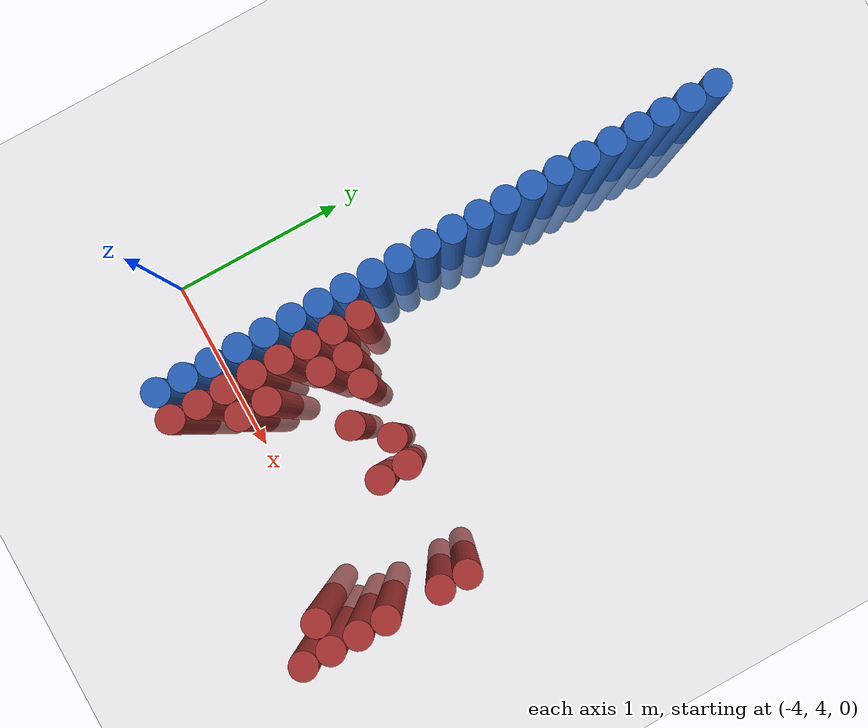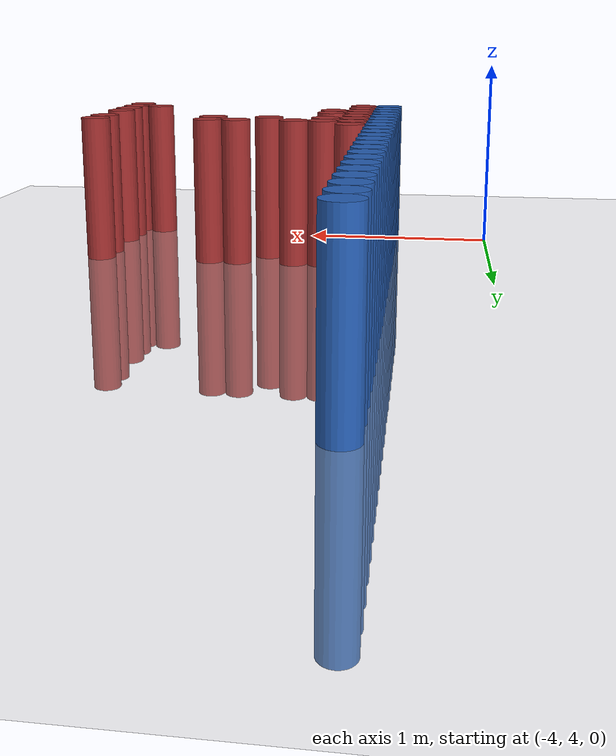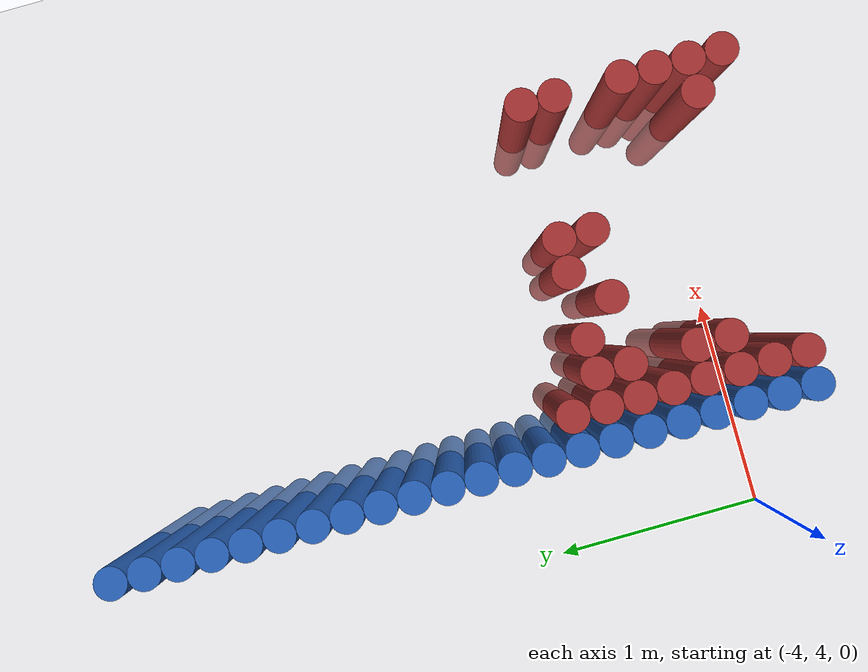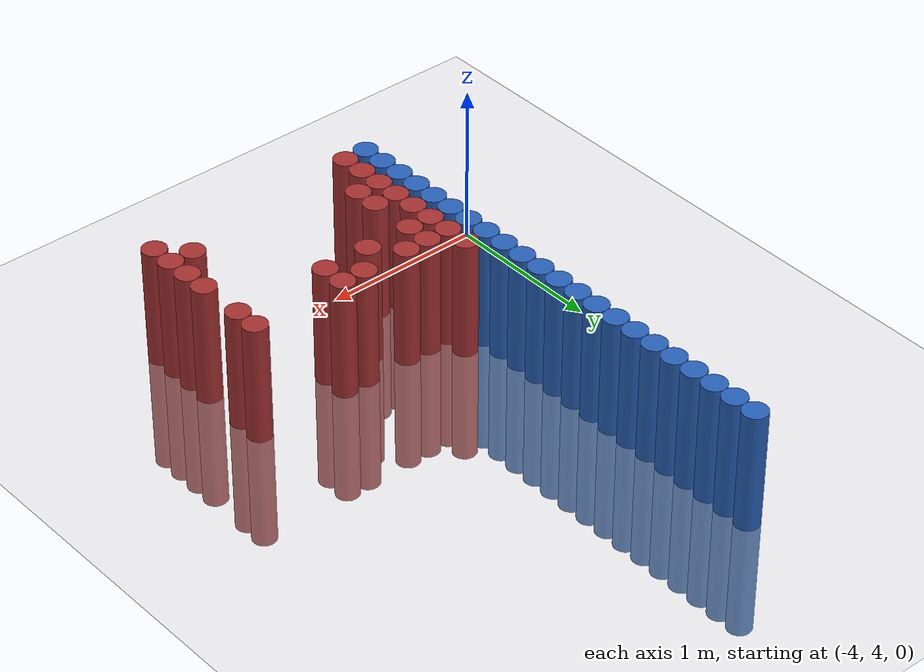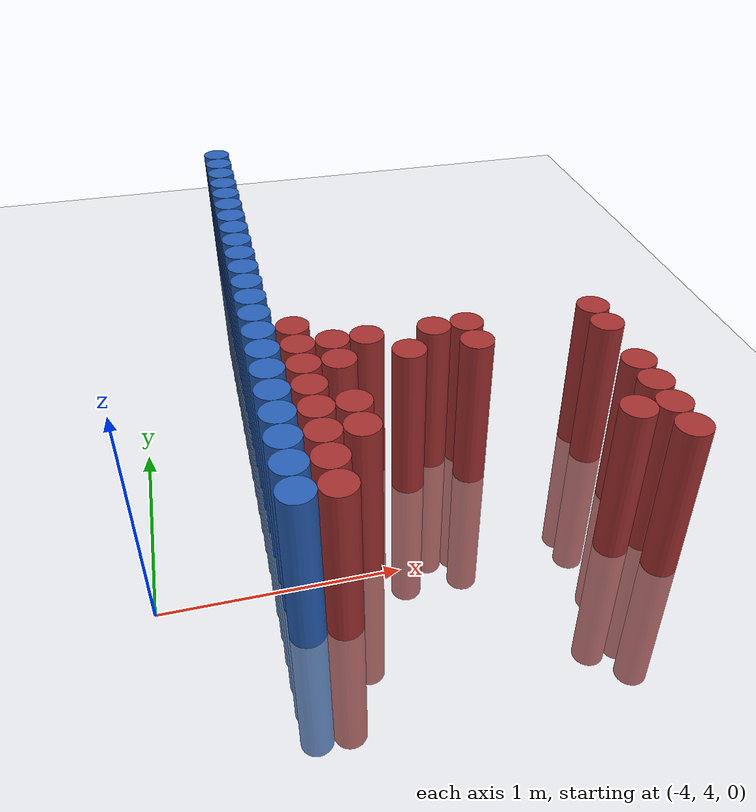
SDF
<sdf version="1.7">
 <world name="default">
  <model name="ground_plane">
   <static>1</static>
   <link name="link">
    <collision name="collision">
     <geometry><plane><normal>0 0 1</normal><size>100 100</size></plane></geometry>
     <surface><friction><ode><mu>100</mu><mu2>50</mu2></ode></friction></surface>
    </collision>
    <visual name="visual">
     <cast_shadows>0</cast_shadows>
     <geometry><plane><normal>0 0 1</normal><size>100 100</size></plane></geometry>
     <material>
      <script><uri>file://media/materials/scripts/gazebo.material</uri><name>Gazebo/Grey</name></script>
     </material>
    </visual>
   </link>
  </model>
  <model name="unit_cylinder_165">
   <static>1</static>
   <pose>-3.425 3.775 0 0 -0 0</pose>
   <link name="link">
    <inertial>
     <mass>1</mass>
     <inertia><ixx>0.145833</ixx><ixy>0</ixy><ixz>0</ixz><iyy>0.145833</iyy><iyz>0</iyz><izz>0.125</izz></inertia>
    </inertial>
    <collision name="collision">
     <geometry><cylinder><radius>0.075</radius><length>1.5</length></cylinder></geometry>
    </collision>
    <visual name="visual">
     <geometry><cylinder><radius>0.075</radius><length>1.5</length></cylinder></geometry>
     <material><ambient>0.152 0.379 0.72 1</ambient><diffuse>0.152 0.379 0.72 1</diffuse></material>
     <material>
      <script><name>Gazebo/Grey</name><uri>file://media/materials/scripts/gazebo.material</uri></script>
     </material>
    </visual>
   </link>
  </model>
  <model name="unit_cylinder_167">
   <static>1</static>
   <pose>-3.425 3.925 0 0 -0 0</pose>
   <link name="link">
    <inertial>
     <mass>1</mass>
     <inertia><ixx>0.145833</ixx><ixy>0</ixy><ixz>0</ixz><iyy>0.145833</iyy><iyz>0</iyz><izz>0.125</izz></inertia>
    </inertial>
    <collision name="collision">
     <geometry><cylinder><radius>0.075</radius><length>1.5</length></cylinder></geometry>
    </collision>
    <visual name="visual">
     <geometry><cylinder><radius>0.075</radius><length>1.5</length></cylinder></geometry>
     <material><ambient>0.152 0.379 0.72 1</ambient><diffuse>0.152 0.379 0.72 1</diffuse></material>
     <material>
      <script><name>Gazebo/Grey</name><uri>file://media/materials/scripts/gazebo.material</uri></script>
     </material>
    </visual>
   </link>
  </model>
  <model name="unit_cylinder_169">
   <static>1</static>
   <pose>-3.425 4.075 0 0 -0 0</pose>
   <link name="link">
    <inertial>
     <mass>1</mass>
     <inertia><ixx>0.145833</ixx><ixy>0</ixy><ixz>0</ixz><iyy>0.145833</iyy><iyz>0</iyz><izz>0.125</izz></inertia>
    </inertial>
    <collision name="collision">
     <geometry><cylinder><radius>0.075</radius><length>1.5</length></cylinder></geometry>
    </collision>
    <visual name="visual">
     <geometry><cylinder><radius>0.075</radius><length>1.5</length></cylinder></geometry>
     <material><ambient>0.152 0.379 0.72 1</ambient><diffuse>0.152 0.379 0.72 1</diffuse></material>
     <material>
      <script><name>Gazebo/Grey</name><uri>file://media/materials/scripts/gazebo.material</uri></script>
     </material>
    </visual>
   </link>
  </model>
  <model name="unit_cylinder_171">
   <static>1</static>
   <pose>-3.425 4.225 0 0 -0 0</pose>
   <link name="link">
    <inertial>
     <mass>1</mass>
     <inertia><ixx>0.145833</ixx><ixy>0</ixy><ixz>0</ixz><iyy>0.145833</iyy><iyz>0</iyz><izz>0.125</izz></inertia>
    </inertial>
    <collision name="collision">
     <geometry><cylinder><radius>0.075</radius><length>1.5</length></cylinder></geometry>
    </collision>
    <visual name="visual">
     <geometry><cylinder><radius>0.075</radius><length>1.5</length></cylinder></geometry>
     <material><ambient>0.152 0.379 0.72 1</ambient><diffuse>0.152 0.379 0.72 1</diffuse></material>
     <material>
      <script><name>Gazebo/Grey</name><uri>file://media/materials/scripts/gazebo.material</uri></script>
     </material>
    </visual>
   </link>
  </model>
  <model name="unit_cylinder_173">
   <static>1</static>
   <pose>-3.425 4.375 0 0 -0 0</pose>
   <link name="link">
    <inertial>
     <mass>1</mass>
     <inertia><ixx>0.145833</ixx><ixy>0</ixy><ixz>0</ixz><iyy>0.145833</iyy><iyz>0</iyz><izz>0.125</izz></inertia>
    </inertial>
    <collision name="collision">
     <geometry><cylinder><radius>0.075</radius><length>1.5</length></cylinder></geometry>
    </collision>
    <visual name="visual">
     <geometry><cylinder><radius>0.075</radius><length>1.5</length></cylinder></geometry>
     <material><ambient>0.152 0.379 0.72 1</ambient><diffuse>0.152 0.379 0.72 1</diffuse></material>
     <material>
      <script><name>Gazebo/Grey</name><uri>file://media/materials/scripts/gazebo.material</uri></script>
     </material>
    </visual>
   </link>
  </model>
  <model name="unit_cylinder_175">
   <static>1</static>
   <pose>-3.425 4.525 0 0 -0 0</pose>
   <link name="link">
    <inertial>
     <mass>1</mass>
     <inertia><ixx>0.145833</ixx><ixy>0</ixy><ixz>0</ixz><iyy>0.145833</iyy><iyz>0</iyz><izz>0.125</izz></inertia>
    </inertial>
    <collision name="collision">
     <geometry><cylinder><radius>0.075</radius><length>1.5</length></cylinder></geometry>
    </collision>
    <visual name="visual">
     <geometry><cylinder><radius>0.075</radius><length>1.5</length></cylinder></geometry>
     <material><ambient>0.152 0.379 0.72 1</ambient><diffuse>0.152 0.379 0.72 1</diffuse></material>
     <material>
      <script><name>Gazebo/Grey</name><uri>file://media/materials/scripts/gazebo.material</uri></script>
     </material>
    </visual>
   </link>
  </model>
  <model name="unit_cylinder_177">
   <static>1</static>
   <pose>-3.425 4.675 0 0 -0 0</pose>
   <link name="link">
    <inertial>
     <mass>1</mass>
     <inertia><ixx>0.145833</ixx><ixy>0</ixy><ixz>0</ixz><iyy>0.145833</iyy><iyz>0</iyz><izz>0.125</izz></inertia>
    </inertial>
    <collision name="collision">
     <geometry><cylinder><radius>0.075</radius><length>1.5</length></cylinder></geometry>
    </collision>
    <visual name="visual">
     <geometry><cylinder><radius>0.075</radius><length>1.5</length></cylinder></geometry>
     <material><ambient>0.152 0.379 0.72 1</ambient><diffuse>0.152 0.379 0.72 1</diffuse></material>
     <material>
      <script><name>Gazebo/Grey</name><uri>file://media/materials/scripts/gazebo.material</uri></script>
     </material>
    </visual>
   </link>
  </model>
  <model name="unit_cylinder_179">
   <static>1</static>
   <pose>-3.425 4.825 0 0 -0 0</pose>
   <link name="link">
    <inertial>
     <mass>1</mass>
     <inertia><ixx>0.145833</ixx><ixy>0</ixy><ixz>0</ixz><iyy>0.145833</iyy><iyz>0</iyz><izz>0.125</izz></inertia>
    </inertial>
    <collision name="collision">
     <geometry><cylinder><radius>0.075</radius><length>1.5</length></cylinder></geometry>
    </collision>
    <visual name="visual">
     <geometry><cylinder><radius>0.075</radius><length>1.5</length></cylinder></geometry>
     <material><ambient>0.152 0.379 0.72 1</ambient><diffuse>0.152 0.379 0.72 1</diffuse></material>
     <material>
      <script><name>Gazebo/Grey</name><uri>file://media/materials/scripts/gazebo.material</uri></script>
     </material>
    </visual>
   </link>
  </model>
  <model name="unit_cylinder_181">
   <static>1</static>
   <pose>-3.425 4.975 0 0 -0 0</pose>
   <link name="link">
    <inertial>
     <mass>1</mass>
     <inertia><ixx>0.145833</ixx><ixy>0</ixy><ixz>0</ixz><iyy>0.145833</iyy><iyz>0</iyz><izz>0.125</izz></inertia>
    </inertial>
    <collision name="collision">
     <geometry><cylinder><radius>0.075</radius><length>1.5</length></cylinder></geometry>
    </collision>
    <visual name="visual">
     <geometry><cylinder><radius>0.075</radius><length>1.5</length></cylinder></geometry>
     <material><ambient>0.152 0.379 0.72 1</ambient><diffuse>0.152 0.379 0.72 1</diffuse></material>
     <material>
      <script><name>Gazebo/Grey</name><uri>file://media/materials/scripts/gazebo.material</uri></script>
     </material>
    </visual>
   </link>
  </model>
  <model name="unit_cylinder_183">
   <static>1</static>
   <pose>-3.425 5.125 0 0 -0 0</pose>
   <link name="link">
    <inertial>
     <mass>1</mass>
     <inertia><ixx>0.145833</ixx><ixy>0</ixy><ixz>0</ixz><iyy>0.145833</iyy><iyz>0</iyz><izz>0.125</izz></inertia>
    </inertial>
    <collision name="collision">
     <geometry><cylinder><radius>0.075</radius><length>1.5</length></cylinder></geometry>
    </collision>
    <visual name="visual">
     <geometry><cylinder><radius>0.075</radius><length>1.5</length></cylinder></geometry>
     <material><ambient>0.152 0.379 0.72 1</ambient><diffuse>0.152 0.379 0.72 1</diffuse></material>
     <material>
      <script><name>Gazebo/Grey</name><uri>file://media/materials/scripts/gazebo.material</uri></script>
     </material>
    </visual>
   </link>
  </model>
  <model name="unit_cylinder_185">
   <static>1</static>
   <pose>-3.425 5.275 0 0 -0 0</pose>
   <link name="link">
    <inertial>
     <mass>1</mass>
     <inertia><ixx>0.145833</ixx><ixy>0</ixy><ixz>0</ixz><iyy>0.145833</iyy><iyz>0</iyz><izz>0.125</izz></inertia>
    </inertial>
    <collision name="collision">
     <geometry><cylinder><radius>0.075</radius><length>1.5</length></cylinder></geometry>
    </collision>
    <visual name="visual">
     <geometry><cylinder><radius>0.075</radius><length>1.5</length></cylinder></geometry>
     <material><ambient>0.152 0.379 0.72 1</ambient><diffuse>0.152 0.379 0.72 1</diffuse></material>
     <material>
      <script><name>Gazebo/Grey</name><uri>file://media/materials/scripts/gazebo.material</uri></script>
     </material>
    </visual>
   </link>
  </model>
  <model name="unit_cylinder_187">
   <static>1</static>
   <pose>-3.425 5.425 0 0 -0 0</pose>
   <link name="link">
    <inertial>
     <mass>1</mass>
     <inertia><ixx>0.145833</ixx><ixy>0</ixy><ixz>0</ixz><iyy>0.145833</iyy><iyz>0</iyz><izz>0.125</izz></inertia>
    </inertial>
    <collision name="collision">
     <geometry><cylinder><radius>0.075</radius><length>1.5</length></cylinder></geometry>
    </collision>
    <visual name="visual">
     <geometry><cylinder><radius>0.075</radius><length>1.5</length></cylinder></geometry>
     <material><ambient>0.152 0.379 0.72 1</ambient><diffuse>0.152 0.379 0.72 1</diffuse></material>
     <material>
      <script><name>Gazebo/Grey</name><uri>file://media/materials/scripts/gazebo.material</uri></script>
     </material>
    </visual>
   </link>
  </model>
  <model name="unit_cylinder_189">
   <static>1</static>
   <pose>-3.425 5.575 0 0 -0 0</pose>
   <link name="link">
    <inertial>
     <mass>1</mass>
     <inertia><ixx>0.145833</ixx><ixy>0</ixy><ixz>0</ixz><iyy>0.145833</iyy><iyz>0</iyz><izz>0.125</izz></inertia>
    </inertial>
    <collision name="collision">
     <geometry><cylinder><radius>0.075</radius><length>1.5</length></cylinder></geometry>
    </collision>
    <visual name="visual">
     <geometry><cylinder><radius>0.075</radius><length>1.5</length></cylinder></geometry>
     <material><ambient>0.152 0.379 0.72 1</ambient><diffuse>0.152 0.379 0.72 1</diffuse></material>
     <material>
      <script><name>Gazebo/Grey</name><uri>file://media/materials/scripts/gazebo.material</uri></script>
     </material>
    </visual>
   </link>
  </model>
  <model name="unit_cylinder_191">
   <static>1</static>
   <pose>-3.425 5.725 0 0 -0 0</pose>
   <link name="link">
    <inertial>
     <mass>1</mass>
     <inertia><ixx>0.145833</ixx><ixy>0</ixy><ixz>0</ixz><iyy>0.145833</iyy><iyz>0</iyz><izz>0.125</izz></inertia>
    </inertial>
    <collision name="collision">
     <geometry><cylinder><radius>0.075</radius><length>1.5</length></cylinder></geometry>
    </collision>
    <visual name="visual">
     <geometry><cylinder><radius>0.075</radius><length>1.5</length></cylinder></geometry>
     <material><ambient>0.152 0.379 0.72 1</ambient><diffuse>0.152 0.379 0.72 1</diffuse></material>
     <material>
      <script><name>Gazebo/Grey</name><uri>file://media/materials/scripts/gazebo.material</uri></script>
     </material>
    </visual>
   </link>
  </model>
  <model name="unit_cylinder_193">
   <static>1</static>
   <pose>-3.425 5.875 0 0 -0 0</pose>
   <link name="link">
    <inertial>
     <mass>1</mass>
     <inertia><ixx>0.145833</ixx><ixy>0</ixy><ixz>0</ixz><iyy>0.145833</iyy><iyz>0</iyz><izz>0.125</izz></inertia>
    </inertial>
    <collision name="collision">
     <geometry><cylinder><radius>0.075</radius><length>1.5</length></cylinder></geometry>
    </collision>
    <visual name="visual">
     <geometry><cylinder><radius>0.075</radius><length>1.5</length></cylinder></geometry>
     <material><ambient>0.152 0.379 0.72 1</ambient><diffuse>0.152 0.379 0.72 1</diffuse></material>
     <material>
      <script><name>Gazebo/Grey</name><uri>file://media/materials/scripts/gazebo.material</uri></script>
     </material>
    </visual>
   </link>
  </model>
  <model name="unit_cylinder_195">
   <static>1</static>
   <pose>-3.425 6.025 0 0 -0 0</pose>
   <link name="link">
    <inertial>
     <mass>1</mass>
     <inertia><ixx>0.145833</ixx><ixy>0</ixy><ixz>0</ixz><iyy>0.145833</iyy><iyz>0</iyz><izz>0.125</izz></inertia>
    </inertial>
    <collision name="collision">
     <geometry><cylinder><radius>0.075</radius><length>1.5</length></cylinder></geometry>
    </collision>
    <visual name="visual">
     <geometry><cylinder><radius>0.075</radius><length>1.5</length></cylinder></geometry>
     <material><ambient>0.152 0.379 0.72 1</ambient><diffuse>0.152 0.379 0.72 1</diffuse></material>
     <material>
      <script><name>Gazebo/Grey</name><uri>file://media/materials/scripts/gazebo.material</uri></script>
     </material>
    </visual>
   </link>
  </model>
  <model name="unit_cylinder_197">
   <static>1</static>
   <pose>-3.425 6.175 0 0 -0 0</pose>
   <link name="link">
    <inertial>
     <mass>1</mass>
     <inertia><ixx>0.145833</ixx><ixy>0</ixy><ixz>0</ixz><iyy>0.145833</iyy><iyz>0</iyz><izz>0.125</izz></inertia>
    </inertial>
    <collision name="collision">
     <geometry><cylinder><radius>0.075</radius><length>1.5</length></cylinder></geometry>
    </collision>
    <visual name="visual">
     <geometry><cylinder><radius>0.075</radius><length>1.5</length></cylinder></geometry>
     <material><ambient>0.152 0.379 0.72 1</ambient><diffuse>0.152 0.379 0.72 1</diffuse></material>
     <material>
      <script><name>Gazebo/Grey</name><uri>file://media/materials/scripts/gazebo.material</uri></script>
     </material>
    </visual>
   </link>
  </model>
  <model name="unit_cylinder_199">
   <static>1</static>
   <pose>-3.425 6.325 0 0 -0 0</pose>
   <link name="link">
    <inertial>
     <mass>1</mass>
     <inertia><ixx>0.145833</ixx><ixy>0</ixy><ixz>0</ixz><iyy>0.145833</iyy><iyz>0</iyz><izz>0.125</izz></inertia>
    </inertial>
    <collision name="collision">
     <geometry><cylinder><radius>0.075</radius><length>1.5</length></cylinder></geometry>
    </collision>
    <visual name="visual">
     <geometry><cylinder><radius>0.075</radius><length>1.5</length></cylinder></geometry>
     <material><ambient>0.152 0.379 0.72 1</ambient><diffuse>0.152 0.379 0.72 1</diffuse></material>
     <material>
      <script><name>Gazebo/Grey</name><uri>file://media/materials/scripts/gazebo.material</uri></script>
     </material>
    </visual>
   </link>
  </model>
  <model name="unit_cylinder_201">
   <static>1</static>
   <pose>-3.425 6.475 0 0 -0 0</pose>
   <link name="link">
    <inertial>
     <mass>1</mass>
     <inertia><ixx>0.145833</ixx><ixy>0</ixy><ixz>0</ixz><iyy>0.145833</iyy><iyz>0</iyz><izz>0.125</izz></inertia>
    </inertial>
    <collision name="collision">
     <geometry><cylinder><radius>0.075</radius><length>1.5</length></cylinder></geometry>
    </collision>
    <visual name="visual">
     <geometry><cylinder><radius>0.075</radius><length>1.5</length></cylinder></geometry>
     <material><ambient>0.152 0.379 0.72 1</ambient><diffuse>0.152 0.379 0.72 1</diffuse></material>
     <material>
      <script><name>Gazebo/Grey</name><uri>file://media/materials/scripts/gazebo.material</uri></script>
     </material>
    </visual>
   </link>
  </model>
  <model name="unit_cylinder_203">
   <static>1</static>
   <pose>-3.425 6.625 0 0 -0 0</pose>
   <link name="link">
    <inertial>
     <mass>1</mass>
     <inertia><ixx>0.145833</ixx><ixy>0</ixy><ixz>0</ixz><iyy>0.145833</iyy><iyz>0</iyz><izz>0.125</izz></inertia>
    </inertial>
    <collision name="collision">
     <geometry><cylinder><radius>0.075</radius><length>1.5</length></cylinder></geometry>
    </collision>
    <visual name="visual">
     <geometry><cylinder><radius>0.075</radius><length>1.5</length></cylinder></geometry>
     <material><ambient>0.152 0.379 0.72 1</ambient><diffuse>0.152 0.379 0.72 1</diffuse></material>
     <material>
      <script><name>Gazebo/Grey</name><uri>file://media/materials/scripts/gazebo.material</uri></script>
     </material>
    </visual>
   </link>
  </model>
  <model name="unit_cylinder_205">
   <static>1</static>
   <pose>-3.425 6.775 0 0 -0 0</pose>
   <link name="link">
    <inertial>
     <mass>1</mass>
     <inertia><ixx>0.145833</ixx><ixy>0</ixy><ixz>0</ixz><iyy>0.145833</iyy><iyz>0</iyz><izz>0.125</izz></inertia>
    </inertial>
    <collision name="collision">
     <geometry><cylinder><radius>0.075</radius><length>1.5</length></cylinder></geometry>
    </collision>
    <visual name="visual">
     <geometry><cylinder><radius>0.075</radius><length>1.5</length></cylinder></geometry>
     <material><ambient>0.152 0.379 0.72 1</ambient><diffuse>0.152 0.379 0.72 1</diffuse></material>
     <material>
      <script><name>Gazebo/Grey</name><uri>file://media/materials/scripts/gazebo.material</uri></script>
     </material>
    </visual>
   </link>
  </model>
  <model name="unit_cylinder_207">
   <static>1</static>
   <pose>-3.425 6.925 0 0 -0 0</pose>
   <link name="link">
    <inertial>
     <mass>1</mass>
     <inertia><ixx>0.145833</ixx><ixy>0</ixy><ixz>0</ixz><iyy>0.145833</iyy><iyz>0</iyz><izz>0.125</izz></inertia>
    </inertial>
    <collision name="collision">
     <geometry><cylinder><radius>0.075</radius><length>1.5</length></cylinder></geometry>
    </collision>
    <visual name="visual">
     <geometry><cylinder><radius>0.075</radius><length>1.5</length></cylinder></geometry>
     <material><ambient>0.152 0.379 0.72 1</ambient><diffuse>0.152 0.379 0.72 1</diffuse></material>
     <material>
      <script><name>Gazebo/Grey</name><uri>file://media/materials/scripts/gazebo.material</uri></script>
     </material>
    </visual>
   </link>
  </model>
  <model name="unit_cylinder_246">
   <static>1</static>
   <pose>-3.425 3.775 0 0 -0 0</pose>
   <link name="link">
    <inertial>
     <mass>1</mass>
     <inertia><ixx>0.145833</ixx><ixy>0</ixy><ixz>0</ixz><iyy>0.145833</iyy><iyz>0</iyz><izz>0.125</izz></inertia>
    </inertial>
    <collision name="collision">
     <geometry><cylinder><radius>0.075</radius><length>1.5</length></cylinder></geometry>
    </collision>
    <visual name="visual">
     <geometry><cylinder><radius>0.075</radius><length>1.5</length></cylinder></geometry>
     <material><ambient>0.152 0.379 0.72 1</ambient><diffuse>0.152 0.379 0.72 1</diffuse></material>
     <material>
      <script><name>Gazebo/Grey</name><uri>file://media/materials/scripts/gazebo.material</uri></script>
     </material>
    </visual>
   </link>
  </model>
  <model name="unit_cylinder_247">
   <static>1</static>
   <pose>-3.425 3.925 0 0 -0 0</pose>
   <link name="link">
    <inertial>
     <mass>1</mass>
     <inertia><ixx>0.145833</ixx><ixy>0</ixy><ixz>0</ixz><iyy>0.145833</iyy><iyz>0</iyz><izz>0.125</izz></inertia>
    </inertial>
    <collision name="collision">
     <geometry><cylinder><radius>0.075</radius><length>1.5</length></cylinder></geometry>
    </collision>
    <visual name="visual">
     <geometry><cylinder><radius>0.075</radius><length>1.5</length></cylinder></geometry>
     <material><ambient>0.152 0.379 0.72 1</ambient><diffuse>0.152 0.379 0.72 1</diffuse></material>
     <material>
      <script><name>Gazebo/Grey</name><uri>file://media/materials/scripts/gazebo.material</uri></script>
     </material>
    </visual>
   </link>
  </model>
  <model name="unit_cylinder_248">
   <static>1</static>
   <pose>-3.425 4.075 0 0 -0 0</pose>
   <link name="link">
    <inertial>
     <mass>1</mass>
     <inertia><ixx>0.145833</ixx><ixy>0</ixy><ixz>0</ixz><iyy>0.145833</iyy><iyz>0</iyz><izz>0.125</izz></inertia>
    </inertial>
    <collision name="collision">
     <geometry><cylinder><radius>0.075</radius><length>1.5</length></cylinder></geometry>
    </collision>
    <visual name="visual">
     <geometry><cylinder><radius>0.075</radius><length>1.5</length></cylinder></geometry>
     <material><ambient>0.152 0.379 0.72 1</ambient><diffuse>0.152 0.379 0.72 1</diffuse></material>
     <material>
      <script><name>Gazebo/Grey</name><uri>file://media/materials/scripts/gazebo.material</uri></script>
     </material>
    </visual>
   </link>
  </model>
  <model name="unit_cylinder_249">
   <static>1</static>
   <pose>-3.425 4.225 0 0 -0 0</pose>
   <link name="link">
    <inertial>
     <mass>1</mass>
     <inertia><ixx>0.145833</ixx><ixy>0</ixy><ixz>0</ixz><iyy>0.145833</iyy><iyz>0</iyz><izz>0.125</izz></inertia>
    </inertial>
    <collision name="collision">
     <geometry><cylinder><radius>0.075</radius><length>1.5</length></cylinder></geometry>
    </collision>
    <visual name="visual">
     <geometry><cylinder><radius>0.075</radius><length>1.5</length></cylinder></geometry>
     <material><ambient>0.152 0.379 0.72 1</ambient><diffuse>0.152 0.379 0.72 1</diffuse></material>
     <material>
      <script><name>Gazebo/Grey</name><uri>file://media/materials/scripts/gazebo.material</uri></script>
     </material>
    </visual>
   </link>
  </model>
  <model name="unit_cylinder_250">
   <static>1</static>
   <pose>-3.425 4.375 0 0 -0 0</pose>
   <link name="link">
    <inertial>
     <mass>1</mass>
     <inertia><ixx>0.145833</ixx><ixy>0</ixy><ixz>0</ixz><iyy>0.145833</iyy><iyz>0</iyz><izz>0.125</izz></inertia>
    </inertial>
    <collision name="collision">
     <geometry><cylinder><radius>0.075</radius><length>1.5</length></cylinder></geometry>
    </collision>
    <visual name="visual">
     <geometry><cylinder><radius>0.075</radius><length>1.5</length></cylinder></geometry>
     <material><ambient>0.152 0.379 0.72 1</ambient><diffuse>0.152 0.379 0.72 1</diffuse></material>
     <material>
      <script><name>Gazebo/Grey</name><uri>file://media/materials/scripts/gazebo.material</uri></script>
     </material>
    </visual>
   </link>
  </model>
  <model name="unit_cylinder_251">
   <static>1</static>
   <pose>-3.425 4.525 0 0 -0 0</pose>
   <link name="link">
    <inertial>
     <mass>1</mass>
     <inertia><ixx>0.145833</ixx><ixy>0</ixy><ixz>0</ixz><iyy>0.145833</iyy><iyz>0</iyz><izz>0.125</izz></inertia>
    </inertial>
    <collision name="collision">
     <geometry><cylinder><radius>0.075</radius><length>1.5</length></cylinder></geometry>
    </collision>
    <visual name="visual">
     <geometry><cylinder><radius>0.075</radius><length>1.5</length></cylinder></geometry>
     <material><ambient>0.152 0.379 0.72 1</ambient><diffuse>0.152 0.379 0.72 1</diffuse></material>
     <material>
      <script><name>Gazebo/Grey</name><uri>file://media/materials/scripts/gazebo.material</uri></script>
     </material>
    </visual>
   </link>
  </model>
  <model name="unit_cylinder_252">
   <static>1</static>
   <pose>-3.425 4.675 0 0 -0 0</pose>
   <link name="link">
    <inertial>
     <mass>1</mass>
     <inertia><ixx>0.145833</ixx><ixy>0</ixy><ixz>0</ixz><iyy>0.145833</iyy><iyz>0</iyz><izz>0.125</izz></inertia>
    </inertial>
    <collision name="collision">
     <geometry><cylinder><radius>0.075</radius><length>1.5</length></cylinder></geometry>
    </collision>
    <visual name="visual">
     <geometry><cylinder><radius>0.075</radius><length>1.5</length></cylinder></geometry>
     <material><ambient>0.152 0.379 0.72 1</ambient><diffuse>0.152 0.379 0.72 1</diffuse></material>
     <material>
      <script><name>Gazebo/Grey</name><uri>file://media/materials/scripts/gazebo.material</uri></script>
     </material>
    </visual>
   </link>
  </model>
  <model name="unit_cylinder_253">
   <static>1</static>
   <pose>-3.425 4.825 0 0 -0 0</pose>
   <link name="link">
    <inertial>
     <mass>1</mass>
     <inertia><ixx>0.145833</ixx><ixy>0</ixy><ixz>0</ixz><iyy>0.145833</iyy><iyz>0</iyz><izz>0.125</izz></inertia>
    </inertial>
    <collision name="collision">
     <geometry><cylinder><radius>0.075</radius><length>1.5</length></cylinder></geometry>
    </collision>
    <visual name="visual">
     <geometry><cylinder><radius>0.075</radius><length>1.5</length></cylinder></geometry>
     <material><ambient>0.152 0.379 0.72 1</ambient><diffuse>0.152 0.379 0.72 1</diffuse></material>
     <material>
      <script><name>Gazebo/Grey</name><uri>file://media/materials/scripts/gazebo.material</uri></script>
     </material>
    </visual>
   </link>
  </model>
  <model name="unit_cylinder_254">
   <static>1</static>
   <pose>-3.425 4.975 0 0 -0 0</pose>
   <link name="link">
    <inertial>
     <mass>1</mass>
     <inertia><ixx>0.145833</ixx><ixy>0</ixy><ixz>0</ixz><iyy>0.145833</iyy><iyz>0</iyz><izz>0.125</izz></inertia>
    </inertial>
    <collision name="collision">
     <geometry><cylinder><radius>0.075</radius><length>1.5</length></cylinder></geometry>
    </collision>
    <visual name="visual">
     <geometry><cylinder><radius>0.075</radius><length>1.5</length></cylinder></geometry>
     <material><ambient>0.152 0.379 0.72 1</ambient><diffuse>0.152 0.379 0.72 1</diffuse></material>
     <material>
      <script><name>Gazebo/Grey</name><uri>file://media/materials/scripts/gazebo.material</uri></script>
     </material>
    </visual>
   </link>
  </model>
  <model name="unit_cylinder_255">
   <static>1</static>
   <pose>-3.425 5.125 0 0 -0 0</pose>
   <link name="link">
    <inertial>
     <mass>1</mass>
     <inertia><ixx>0.145833</ixx><ixy>0</ixy><ixz>0</ixz><iyy>0.145833</iyy><iyz>0</iyz><izz>0.125</izz></inertia>
    </inertial>
    <collision name="collision">
     <geometry><cylinder><radius>0.075</radius><length>1.5</length></cylinder></geometry>
    </collision>
    <visual name="visual">
     <geometry><cylinder><radius>0.075</radius><length>1.5</length></cylinder></geometry>
     <material><ambient>0.152 0.379 0.72 1</ambient><diffuse>0.152 0.379 0.72 1</diffuse></material>
     <material>
      <script><name>Gazebo/Grey</name><uri>file://media/materials/scripts/gazebo.material</uri></script>
     </material>
    </visual>
   </link>
  </model>
  <model name="unit_cylinder_256">
   <static>1</static>
   <pose>-3.425 5.275 0 0 -0 0</pose>
   <link name="link">
    <inertial>
     <mass>1</mass>
     <inertia><ixx>0.145833</ixx><ixy>0</ixy><ixz>0</ixz><iyy>0.145833</iyy><iyz>0</iyz><izz>0.125</izz></inertia>
    </inertial>
    <collision name="collision">
     <geometry><cylinder><radius>0.075</radius><length>1.5</length></cylinder></geometry>
    </collision>
    <visual name="visual">
     <geometry><cylinder><radius>0.075</radius><length>1.5</length></cylinder></geometry>
     <material><ambient>0.152 0.379 0.72 1</ambient><diffuse>0.152 0.379 0.72 1</diffuse></material>
     <material>
      <script><name>Gazebo/Grey</name><uri>file://media/materials/scripts/gazebo.material</uri></script>
     </material>
    </visual>
   </link>
  </model>
  <model name="unit_cylinder_257">
   <static>1</static>
   <pose>-3.425 5.425 0 0 -0 0</pose>
   <link name="link">
    <inertial>
     <mass>1</mass>
     <inertia><ixx>0.145833</ixx><ixy>0</ixy><ixz>0</ixz><iyy>0.145833</iyy><iyz>0</iyz><izz>0.125</izz></inertia>
    </inertial>
    <collision name="collision">
     <geometry><cylinder><radius>0.075</radius><length>1.5</length></cylinder></geometry>
    </collision>
    <visual name="visual">
     <geometry><cylinder><radius>0.075</radius><length>1.5</length></cylinder></geometry>
     <material><ambient>0.152 0.379 0.72 1</ambient><diffuse>0.152 0.379 0.72 1</diffuse></material>
     <material>
      <script><name>Gazebo/Grey</name><uri>file://media/materials/scripts/gazebo.material</uri></script>
     </material>
    </visual>
   </link>
  </model>
  <model name="unit_cylinder_270">
   <static>1</static>
   <pose>-3.275 3.775 0 0 -0 0</pose>
   <link name="link">
    <inertial>
     <mass>1</mass>
     <inertia><ixx>0.145833</ixx><ixy>0</ixy><ixz>0</ixz><iyy>0.145833</iyy><iyz>0</iyz><izz>0.125</izz></inertia>
    </inertial>
    <collision name="collision">
     <geometry><cylinder><radius>0.075</radius><length>1.5</length></cylinder></geometry>
    </collision>
    <visual name="visual">
     <geometry><cylinder><radius>0.075</radius><length>1.5</length></cylinder></geometry>
     <material><ambient>0.648 0.192 0.192 1</ambient><diffuse>0.648 0.192 0.192 1</diffuse></material>
     <material>
      <script><name>Gazebo/Grey</name><uri>file://media/materials/scripts/gazebo.material</uri></script>
     </material>
    </visual>
   </link>
  </model>
  <model name="unit_cylinder_271">
   <static>1</static>
   <pose>-3.275 3.925 0 0 -0 0</pose>
   <link name="link">
    <inertial>
     <mass>1</mass>
     <inertia><ixx>0.145833</ixx><ixy>0</ixy><ixz>0</ixz><iyy>0.145833</iyy><iyz>0</iyz><izz>0.125</izz></inertia>
    </inertial>
    <collision name="collision">
     <geometry><cylinder><radius>0.075</radius><length>1.5</length></cylinder></geometry>
    </collision>
    <visual name="visual">
     <geometry><cylinder><radius>0.075</radius><length>1.5</length></cylinder></geometry>
     <material><ambient>0.648 0.192 0.192 1</ambient><diffuse>0.648 0.192 0.192 1</diffuse></material>
     <material>
      <script><name>Gazebo/Grey</name><uri>file://media/materials/scripts/gazebo.material</uri></script>
     </material>
    </visual>
   </link>
  </model>
  <model name="unit_cylinder_272">
   <static>1</static>
   <pose>-3.275 4.075 0 0 -0 0</pose>
   <link name="link">
    <inertial>
     <mass>1</mass>
     <inertia><ixx>0.145833</ixx><ixy>0</ixy><ixz>0</ixz><iyy>0.145833</iyy><iyz>0</iyz><izz>0.125</izz></inertia>
    </inertial>
    <collision name="collision">
     <geometry><cylinder><radius>0.075</radius><length>1.5</length></cylinder></geometry>
    </collision>
    <visual name="visual">
     <geometry><cylinder><radius>0.075</radius><length>1.5</length></cylinder></geometry>
     <material><ambient>0.648 0.192 0.192 1</ambient><diffuse>0.648 0.192 0.192 1</diffuse></material>
     <material>
      <script><name>Gazebo/Grey</name><uri>file://media/materials/scripts/gazebo.material</uri></script>
     </material>
    </visual>
   </link>
  </model>
  <model name="unit_cylinder_273">
   <static>1</static>
   <pose>-3.275 4.225 0 0 -0 0</pose>
   <link name="link">
    <inertial>
     <mass>1</mass>
     <inertia><ixx>0.145833</ixx><ixy>0</ixy><ixz>0</ixz><iyy>0.145833</iyy><iyz>0</iyz><izz>0.125</izz></inertia>
    </inertial>
    <collision name="collision">
     <geometry><cylinder><radius>0.075</radius><length>1.5</length></cylinder></geometry>
    </collision>
    <visual name="visual">
     <geometry><cylinder><radius>0.075</radius><length>1.5</length></cylinder></geometry>
     <material><ambient>0.648 0.192 0.192 1</ambient><diffuse>0.648 0.192 0.192 1</diffuse></material>
     <material>
      <script><name>Gazebo/Grey</name><uri>file://media/materials/scripts/gazebo.material</uri></script>
     </material>
    </visual>
   </link>
  </model>
  <model name="unit_cylinder_274">
   <static>1</static>
   <pose>-3.275 4.375 0 0 -0 0</pose>
   <link name="link">
    <inertial>
     <mass>1</mass>
     <inertia><ixx>0.145833</ixx><ixy>0</ixy><ixz>0</ixz><iyy>0.145833</iyy><iyz>0</iyz><izz>0.125</izz></inertia>
    </inertial>
    <collision name="collision">
     <geometry><cylinder><radius>0.075</radius><length>1.5</length></cylinder></geometry>
    </collision>
    <visual name="visual">
     <geometry><cylinder><radius>0.075</radius><length>1.5</length></cylinder></geometry>
     <material><ambient>0.648 0.192 0.192 1</ambient><diffuse>0.648 0.192 0.192 1</diffuse></material>
     <material>
      <script><name>Gazebo/Grey</name><uri>file://media/materials/scripts/gazebo.material</uri></script>
     </material>
    </visual>
   </link>
  </model>
  <model name="unit_cylinder_275">
   <static>1</static>
   <pose>-3.275 4.525 0 0 -0 0</pose>
   <link name="link">
    <inertial>
     <mass>1</mass>
     <inertia><ixx>0.145833</ixx><ixy>0</ixy><ixz>0</ixz><iyy>0.145833</iyy><iyz>0</iyz><izz>0.125</izz></inertia>
    </inertial>
    <collision name="collision">
     <geometry><cylinder><radius>0.075</radius><length>1.5</length></cylinder></geometry>
    </collision>
    <visual name="visual">
     <geometry><cylinder><radius>0.075</radius><length>1.5</length></cylinder></geometry>
     <material><ambient>0.648 0.192 0.192 1</ambient><diffuse>0.648 0.192 0.192 1</diffuse></material>
     <material>
      <script><name>Gazebo/Grey</name><uri>file://media/materials/scripts/gazebo.material</uri></script>
     </material>
    </visual>
   </link>
  </model>
  <model name="unit_cylinder_276">
   <static>1</static>
   <pose>-3.275 4.675 0 0 -0 0</pose>
   <link name="link">
    <inertial>
     <mass>1</mass>
     <inertia><ixx>0.145833</ixx><ixy>0</ixy><ixz>0</ixz><iyy>0.145833</iyy><iyz>0</iyz><izz>0.125</izz></inertia>
    </inertial>
    <collision name="collision">
     <geometry><cylinder><radius>0.075</radius><length>1.5</length></cylinder></geometry>
    </collision>
    <visual name="visual">
     <geometry><cylinder><radius>0.075</radius><length>1.5</length></cylinder></geometry>
     <material><ambient>0.648 0.192 0.192 1</ambient><diffuse>0.648 0.192 0.192 1</diffuse></material>
     <material>
      <script><name>Gazebo/Grey</name><uri>file://media/materials/scripts/gazebo.material</uri></script>
     </material>
    </visual>
   </link>
  </model>
  <model name="unit_cylinder_277">
   <static>1</static>
   <pose>-3.275 4.825 0 0 -0 0</pose>
   <link name="link">
    <inertial>
     <mass>1</mass>
     <inertia><ixx>0.145833</ixx><ixy>0</ixy><ixz>0</ixz><iyy>0.145833</iyy><iyz>0</iyz><izz>0.125</izz></inertia>
    </inertial>
    <collision name="collision">
     <geometry><cylinder><radius>0.075</radius><length>1.5</length></cylinder></geometry>
    </collision>
    <visual name="visual">
     <geometry><cylinder><radius>0.075</radius><length>1.5</length></cylinder></geometry>
     <material><ambient>0.648 0.192 0.192 1</ambient><diffuse>0.648 0.192 0.192 1</diffuse></material>
     <material>
      <script><name>Gazebo/Grey</name><uri>file://media/materials/scripts/gazebo.material</uri></script>
     </material>
    </visual>
   </link>
  </model>
  <model name="unit_cylinder_279">
   <static>1</static>
   <pose>-3.125 4.075 0 0 -0 0</pose>
   <link name="link">
    <inertial>
     <mass>1</mass>
     <inertia><ixx>0.145833</ixx><ixy>0</ixy><ixz>0</ixz><iyy>0.145833</iyy><iyz>0</iyz><izz>0.125</izz></inertia>
    </inertial>
    <collision name="collision">
     <geometry><cylinder><radius>0.075</radius><length>1.5</length></cylinder></geometry>
    </collision>
    <visual name="visual">
     <geometry><cylinder><radius>0.075</radius><length>1.5</length></cylinder></geometry>
     <material><ambient>0.648 0.192 0.192 1</ambient><diffuse>0.648 0.192 0.192 1</diffuse></material>
     <material>
      <script><name>Gazebo/Grey</name><uri>file://media/materials/scripts/gazebo.material</uri></script>
     </material>
    </visual>
   </link>
  </model>
  <model name="unit_cylinder_280">
   <static>1</static>
   <pose>-3.125 4.225 0 0 -0 0</pose>
   <link name="link">
    <inertial>
     <mass>1</mass>
     <inertia><ixx>0.145833</ixx><ixy>0</ixy><ixz>0</ixz><iyy>0.145833</iyy><iyz>0</iyz><izz>0.125</izz></inertia>
    </inertial>
    <collision name="collision">
     <geometry><cylinder><radius>0.075</radius><length>1.5</length></cylinder></geometry>
    </collision>
    <visual name="visual">
     <geometry><cylinder><radius>0.075</radius><length>1.5</length></cylinder></geometry>
     <material><ambient>0.648 0.192 0.192 1</ambient><diffuse>0.648 0.192 0.192 1</diffuse></material>
     <material>
      <script><name>Gazebo/Grey</name><uri>file://media/materials/scripts/gazebo.material</uri></script>
     </material>
    </visual>
   </link>
  </model>
  <model name="unit_cylinder_281">
   <static>1</static>
   <pose>-3.125 4.525 0 0 -0 0</pose>
   <link name="link">
    <inertial>
     <mass>1</mass>
     <inertia><ixx>0.145833</ixx><ixy>0</ixy><ixz>0</ixz><iyy>0.145833</iyy><iyz>0</iyz><izz>0.125</izz></inertia>
    </inertial>
    <collision name="collision">
     <geometry><cylinder><radius>0.075</radius><length>1.5</length></cylinder></geometry>
    </collision>
    <visual name="visual">
     <geometry><cylinder><radius>0.075</radius><length>1.5</length></cylinder></geometry>
     <material><ambient>0.648 0.192 0.192 1</ambient><diffuse>0.648 0.192 0.192 1</diffuse></material>
     <material>
      <script><name>Gazebo/Grey</name><uri>file://media/materials/scripts/gazebo.material</uri></script>
     </material>
    </visual>
   </link>
  </model>
  <model name="unit_cylinder_282">
   <static>1</static>
   <pose>-3.125 4.675 0 0 -0 0</pose>
   <link name="link">
    <inertial>
     <mass>1</mass>
     <inertia><ixx>0.145833</ixx><ixy>0</ixy><ixz>0</ixz><iyy>0.145833</iyy><iyz>0</iyz><izz>0.125</izz></inertia>
    </inertial>
    <collision name="collision">
     <geometry><cylinder><radius>0.075</radius><length>1.5</length></cylinder></geometry>
    </collision>
    <visual name="visual">
     <geometry><cylinder><radius>0.075</radius><length>1.5</length></cylinder></geometry>
     <material><ambient>0.648 0.192 0.192 1</ambient><diffuse>0.648 0.192 0.192 1</diffuse></material>
     <material>
      <script><name>Gazebo/Grey</name><uri>file://media/materials/scripts/gazebo.material</uri></script>
     </material>
    </visual>
   </link>
  </model>
  <model name="unit_cylinder_283">
   <static>1</static>
   <pose>-2.975 4.675 0 0 -0 0</pose>
   <link name="link">
    <inertial>
     <mass>1</mass>
     <inertia><ixx>0.145833</ixx><ixy>0</ixy><ixz>0</ixz><iyy>0.145833</iyy><iyz>0</iyz><izz>0.125</izz></inertia>
    </inertial>
    <collision name="collision">
     <geometry><cylinder><radius>0.075</radius><length>1.5</length></cylinder></geometry>
    </collision>
    <visual name="visual">
     <geometry><cylinder><radius>0.075</radius><length>1.5</length></cylinder></geometry>
     <material><ambient>0.648 0.192 0.192 1</ambient><diffuse>0.648 0.192 0.192 1</diffuse></material>
     <material>
      <script><name>Gazebo/Grey</name><uri>file://media/materials/scripts/gazebo.material</uri></script>
     </material>
    </visual>
   </link>
  </model>
  <model name="unit_cylinder_284">
   <static>1</static>
   <pose>-2.825 4.525 0 0 -0 0</pose>
   <link name="link">
    <inertial>
     <mass>1</mass>
     <inertia><ixx>0.145833</ixx><ixy>0</ixy><ixz>0</ixz><iyy>0.145833</iyy><iyz>0</iyz><izz>0.125</izz></inertia>
    </inertial>
    <collision name="collision">
     <geometry><cylinder><radius>0.075</radius><length>1.5</length></cylinder></geometry>
    </collision>
    <visual name="visual">
     <geometry><cylinder><radius>0.075</radius><length>1.5</length></cylinder></geometry>
     <material><ambient>0.648 0.192 0.192 1</ambient><diffuse>0.648 0.192 0.192 1</diffuse></material>
     <material>
      <script><name>Gazebo/Grey</name><uri>file://media/materials/scripts/gazebo.material</uri></script>
     </material>
    </visual>
   </link>
  </model>
  <model name="unit_cylinder_285">
   <static>1</static>
   <pose>-2.675 4.675 0 0 -0 0</pose>
   <link name="link">
    <inertial>
     <mass>1</mass>
     <inertia><ixx>0.145833</ixx><ixy>0</ixy><ixz>0</ixz><iyy>0.145833</iyy><iyz>0</iyz><izz>0.125</izz></inertia>
    </inertial>
    <collision name="collision">
     <geometry><cylinder><radius>0.075</radius><length>1.5</length></cylinder></geometry>
    </collision>
    <visual name="visual">
     <geometry><cylinder><radius>0.075</radius><length>1.5</length></cylinder></geometry>
     <material><ambient>0.648 0.192 0.192 1</ambient><diffuse>0.648 0.192 0.192 1</diffuse></material>
     <material>
      <script><name>Gazebo/Grey</name><uri>file://media/materials/scripts/gazebo.material</uri></script>
     </material>
    </visual>
   </link>
  </model>
  <model name="unit_cylinder_289">
   <static>1</static>
   <pose>-2.525 4.525 0 0 -0 0</pose>
   <link name="link">
    <inertial>
     <mass>1</mass>
     <inertia><ixx>0.145833</ixx><ixy>0</ixy><ixz>0</ixz><iyy>0.145833</iyy><iyz>0</iyz><izz>0.125</izz></inertia>
    </inertial>
    <collision name="collision">
     <geometry><cylinder><radius>0.075</radius><length>1.5</length></cylinder></geometry>
    </collision>
    <visual name="visual">
     <geometry><cylinder><radius>0.075</radius><length>1.5</length></cylinder></geometry>
     <material><ambient>0.648 0.192 0.192 1</ambient><diffuse>0.648 0.192 0.192 1</diffuse></material>
     <material>
      <script><name>Gazebo/Grey</name><uri>file://media/materials/scripts/gazebo.material</uri></script>
     </material>
    </visual>
   </link>
  </model>
  <model name="unit_cylinder_290">
   <static>1</static>
   <pose>-2.525 4.675 0 0 -0 0</pose>
   <link name="link">
    <inertial>
     <mass>1</mass>
     <inertia><ixx>0.145833</ixx><ixy>0</ixy><ixz>0</ixz><iyy>0.145833</iyy><iyz>0</iyz><izz>0.125</izz></inertia>
    </inertial>
    <collision name="collision">
     <geometry><cylinder><radius>0.075</radius><length>1.5</length></cylinder></geometry>
    </collision>
    <visual name="visual">
     <geometry><cylinder><radius>0.075</radius><length>1.5</length></cylinder></geometry>
     <material><ambient>0.648 0.192 0.192 1</ambient><diffuse>0.648 0.192 0.192 1</diffuse></material>
     <material>
      <script><name>Gazebo/Grey</name><uri>file://media/materials/scripts/gazebo.material</uri></script>
     </material>
    </visual>
   </link>
  </model>
  <model name="unit_cylinder_305">
   <static>1</static>
   <pose>-2.075 3.925 0 0 -0 0</pose>
   <link name="link">
    <inertial>
     <mass>1</mass>
     <inertia><ixx>0.145833</ixx><ixy>0</ixy><ixz>0</ixz><iyy>0.145833</iyy><iyz>0</iyz><izz>0.125</izz></inertia>
    </inertial>
    <collision name="collision">
     <geometry><cylinder><radius>0.075</radius><length>1.5</length></cylinder></geometry>
    </collision>
    <visual name="visual">
     <geometry><cylinder><radius>0.075</radius><length>1.5</length></cylinder></geometry>
     <material><ambient>0.648 0.192 0.192 1</ambient><diffuse>0.648 0.192 0.192 1</diffuse></material>
     <material>
      <script><name>Gazebo/Grey</name><uri>file://media/materials/scripts/gazebo.material</uri></script>
     </material>
    </visual>
   </link>
  </model>
  <model name="unit_cylinder_309">
   <static>1</static>
   <pose>-1.925 3.775 0 0 -0 0</pose>
   <link name="link">
    <inertial>
     <mass>1</mass>
     <inertia><ixx>0.145833</ixx><ixy>0</ixy><ixz>0</ixz><iyy>0.145833</iyy><iyz>0</iyz><izz>0.125</izz></inertia>
    </inertial>
    <collision name="collision">
     <geometry><cylinder><radius>0.075</radius><length>1.5</length></cylinder></geometry>
    </collision>
    <visual name="visual">
     <geometry><cylinder><radius>0.075</radius><length>1.5</length></cylinder></geometry>
     <material><ambient>0.648 0.192 0.192 1</ambient><diffuse>0.648 0.192 0.192 1</diffuse></material>
     <material>
      <script><name>Gazebo/Grey</name><uri>file://media/materials/scripts/gazebo.material</uri></script>
     </material>
    </visual>
   </link>
  </model>
  <model name="unit_cylinder_310">
   <static>1</static>
   <pose>-1.925 3.925 0 0 -0 0</pose>
   <link name="link">
    <inertial>
     <mass>1</mass>
     <inertia><ixx>0.145833</ixx><ixy>0</ixy><ixz>0</ixz><iyy>0.145833</iyy><iyz>0</iyz><izz>0.125</izz></inertia>
    </inertial>
    <collision name="collision">
     <geometry><cylinder><radius>0.075</radius><length>1.5</length></cylinder></geometry>
    </collision>
    <visual name="visual">
     <geometry><cylinder><radius>0.075</radius><length>1.5</length></cylinder></geometry>
     <material><ambient>0.648 0.192 0.192 1</ambient><diffuse>0.648 0.192 0.192 1</diffuse></material>
     <material>
      <script><name>Gazebo/Grey</name><uri>file://media/materials/scripts/gazebo.material</uri></script>
     </material>
    </visual>
   </link>
  </model>
  <model name="unit_cylinder_311">
   <static>1</static>
   <pose>-1.925 4.075 0 0 -0 0</pose>
   <link name="link">
    <inertial>
     <mass>1</mass>
     <inertia><ixx>0.145833</ixx><ixy>0</ixy><ixz>0</ixz><iyy>0.145833</iyy><iyz>0</iyz><izz>0.125</izz></inertia>
    </inertial>
    <collision name="collision">
     <geometry><cylinder><radius>0.075</radius><length>1.5</length></cylinder></geometry>
    </collision>
    <visual name="visual">
     <geometry><cylinder><radius>0.075</radius><length>1.5</length></cylinder></geometry>
     <material><ambient>0.648 0.192 0.192 1</ambient><diffuse>0.648 0.192 0.192 1</diffuse></material>
     <material>
      <script><name>Gazebo/Grey</name><uri>file://media/materials/scripts/gazebo.material</uri></script>
     </material>
    </visual>
   </link>
  </model>
  <model name="unit_cylinder_312">
   <static>1</static>
   <pose>-1.925 4.225 0 0 -0 0</pose>
   <link name="link">
    <inertial>
     <mass>1</mass>
     <inertia><ixx>0.145833</ixx><ixy>0</ixy><ixz>0</ixz><iyy>0.145833</iyy><iyz>0</iyz><izz>0.125</izz></inertia>
    </inertial>
    <collision name="collision">
     <geometry><cylinder><radius>0.075</radius><length>1.5</length></cylinder></geometry>
    </collision>
    <visual name="visual">
     <geometry><cylinder><radius>0.075</radius><length>1.5</length></cylinder></geometry>
     <material><ambient>0.648 0.192 0.192 1</ambient><diffuse>0.648 0.192 0.192 1</diffuse></material>
     <material>
      <script><name>Gazebo/Grey</name><uri>file://media/materials/scripts/gazebo.material</uri></script>
     </material>
    </visual>
   </link>
  </model>
  <model name="unit_cylinder_313">
   <static>1</static>
   <pose>-1.925 4.525 0 0 -0 0</pose>
   <link name="link">
    <inertial>
     <mass>1</mass>
     <inertia><ixx>0.145833</ixx><ixy>0</ixy><ixz>0</ixz><iyy>0.145833</iyy><iyz>0</iyz><izz>0.125</izz></inertia>
    </inertial>
    <collision name="collision">
     <geometry><cylinder><radius>0.075</radius><length>1.5</length></cylinder></geometry>
    </collision>
    <visual name="visual">
     <geometry><cylinder><radius>0.075</radius><length>1.5</length></cylinder></geometry>
     <material><ambient>0.648 0.192 0.192 1</ambient><diffuse>0.648 0.192 0.192 1</diffuse></material>
     <material>
      <script><name>Gazebo/Grey</name><uri>file://media/materials/scripts/gazebo.material</uri></script>
     </material>
    </visual>
   </link>
  </model>
  <model name="unit_cylinder_314">
   <static>1</static>
   <pose>-1.925 4.675 0 0 -0 0</pose>
   <link name="link">
    <inertial>
     <mass>1</mass>
     <inertia><ixx>0.145833</ixx><ixy>0</ixy><ixz>0</ixz><iyy>0.145833</iyy><iyz>0</iyz><izz>0.125</izz></inertia>
    </inertial>
    <collision name="collision">
     <geometry><cylinder><radius>0.075</radius><length>1.5</length></cylinder></geometry>
    </collision>
    <visual name="visual">
     <geometry><cylinder><radius>0.075</radius><length>1.5</length></cylinder></geometry>
     <material><ambient>0.648 0.192 0.192 1</ambient><diffuse>0.648 0.192 0.192 1</diffuse></material>
     <material>
      <script><name>Gazebo/Grey</name><uri>file://media/materials/scripts/gazebo.material</uri></script>
     </material>
    </visual>
   </link>
  </model>
 </world>
</sdf>
